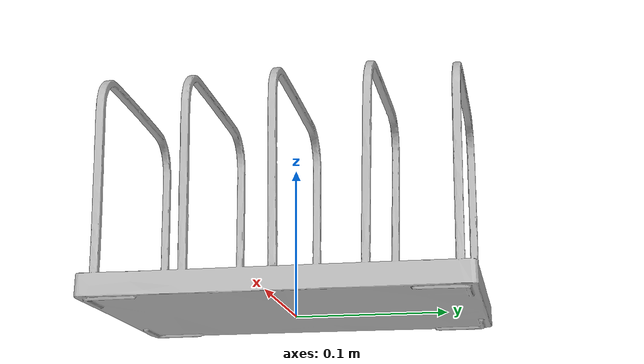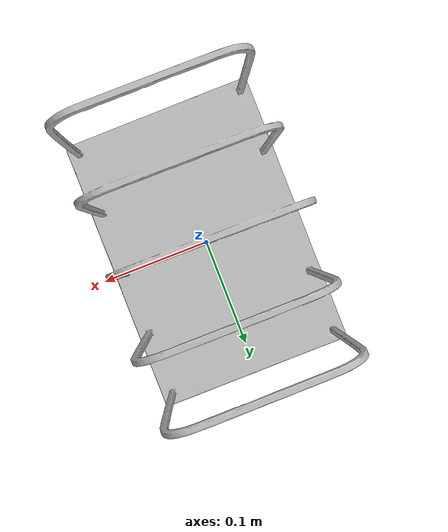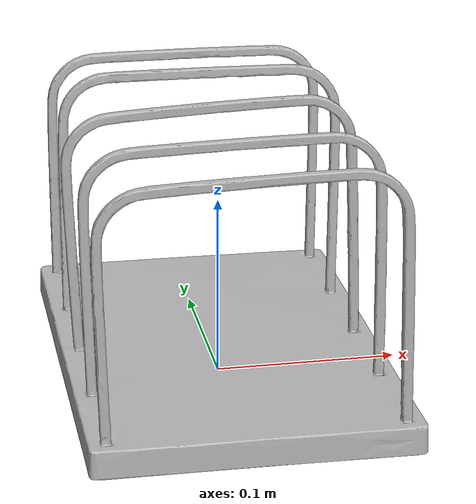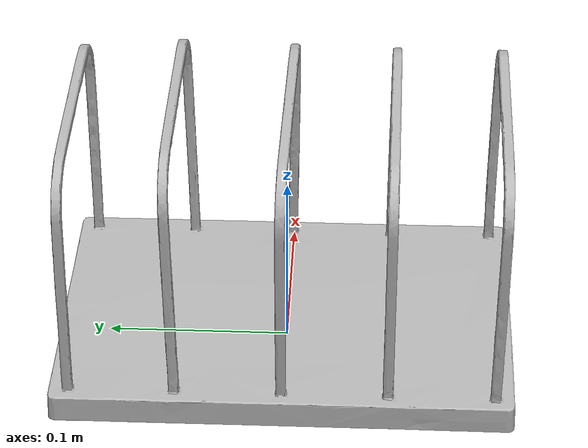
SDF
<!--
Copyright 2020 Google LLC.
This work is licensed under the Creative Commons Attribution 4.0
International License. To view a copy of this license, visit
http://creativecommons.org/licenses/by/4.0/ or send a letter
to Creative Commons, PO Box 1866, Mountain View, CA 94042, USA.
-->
<?xml version="1.0" ?>
<sdf version="1.6">
  <model name="Poppin_File_Sorter_Pink">
    <link name="link_0">
      <visual name="visual">
        <geometry>
          <mesh>
            <uri>meshes/model.obj</uri>
          </mesh>
        </geometry>
      </visual>
      <collision name="collision_0">
        <geometry>
          <mesh>
            <uri>meshes/model.obj</uri>
          </mesh>
        </geometry>
      </collision>
    </link>
  </model>
</sdf>
